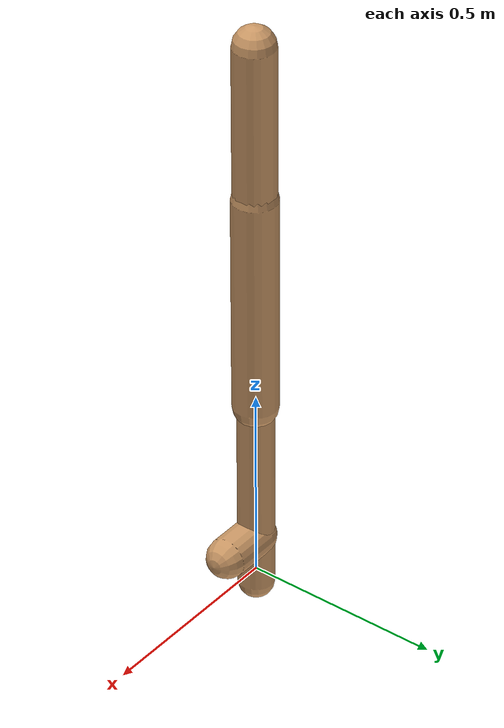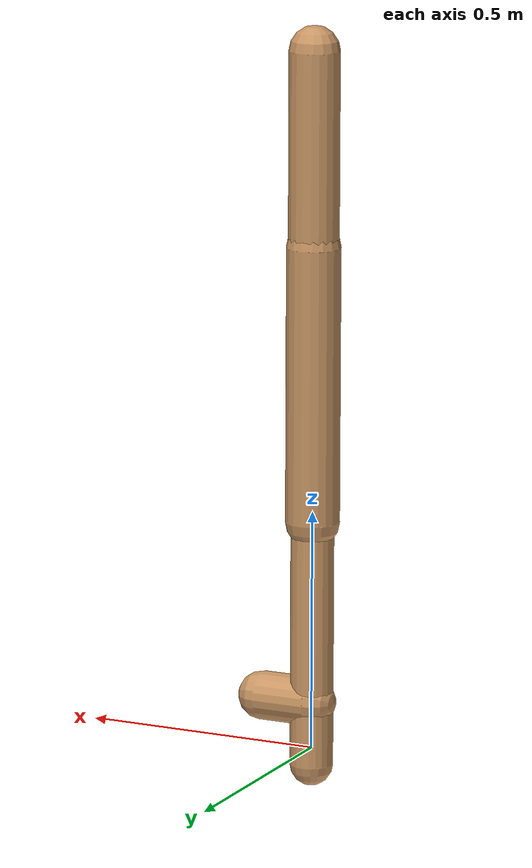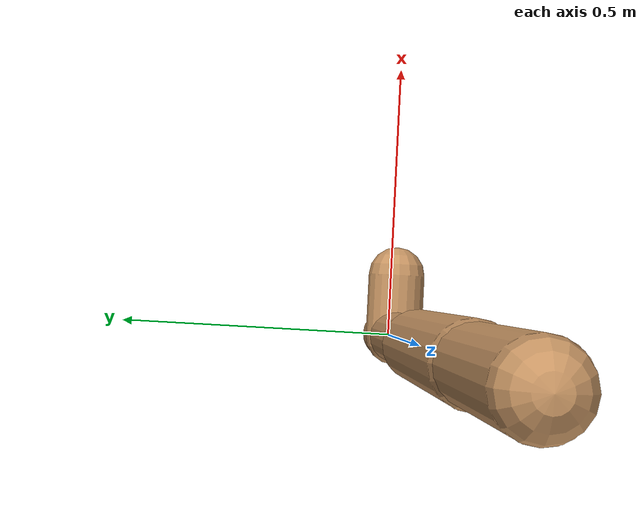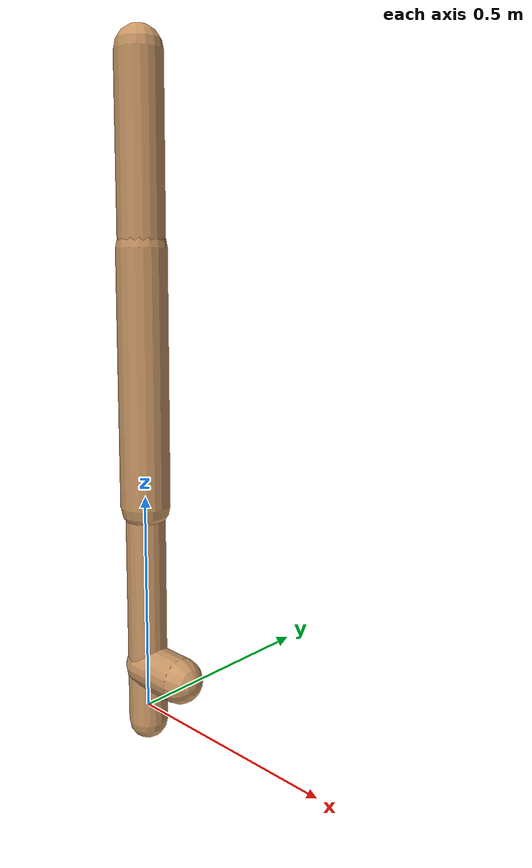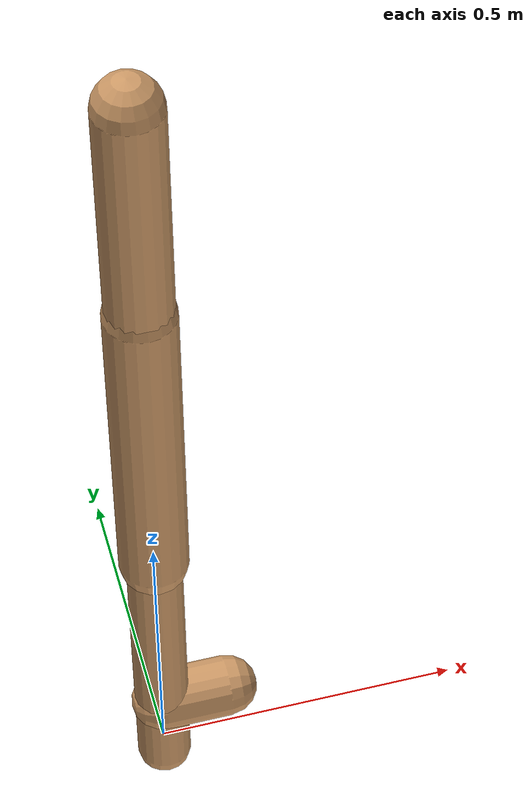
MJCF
<mujoco model="walker2d">
  <compiler angle="degree" coordinate="global" inertiafromgeom="true" />
  <default>
    <joint armature="0.01" damping=".1" limited="true" />
    <geom conaffinity="0" condim="3" contype="1" density="1000" friction="0.8 .1 .1" rgba="0.8 0.6 .4 1" />
  </default>
  <option integrator="RK4" timestep="0.002" />
  <worldbody>

    <body name="torso" pos="0 0 0.25281072058637566">
      <joint armature="0" axis="1 0 0" damping="0" limited="false" name="ignorex" pos="0 0 0" stiffness="0" type="slide" />
      <joint armature="0" axis="0 0 1" damping="0" limited="false" name="ignorez" pos="0 0 0" ref="1.25" stiffness="0" type="slide" />
      <joint armature="0" axis="0 1 0" damping="0" limited="false" name="ignorey" pos="0 0 0" stiffness="0" type="hinge" />
      <geom fromto="0 0 1.45 0 0 1.05" name="torso_geom" size="0.05228052992169427" type="capsule" />
      <body name="thigh">
        <joint axis="0 -1 0" name="thigh_joint" pos="0 0 1.05" range="-150 0" type="hinge" />
        <geom fromto="0.0 0.0 1.05 0.0 0.0 0.4802475534064536" name="thigh_geom" size="0.05597730774967328" type="capsule" />
        <body name="leg" pos="0.0 0.0 -0.11975244659354639">
          <joint axis="0 -1 0" name="leg_joint" pos="0 0 0.6" range="-150 0" type="hinge" />
          <geom fromto="0.0 0.0 0.6 0.0 0.0 -0.03305827399282929" name="leg_geom" size="0.04478184619973862" type="capsule" />
          <body name="foot" pos="0.0 0.0 -0.1330582739928293">
            <joint axis="0 -1 0" name="foot_joint" pos="0 0 0.1" range="-45 45" type="hinge" />
            <geom fromto="0.0 0.0 0.1 0.1111388779036639 0.0 0.1" name="foot_geom" size="0.050433705349613694" type="capsule" />
          </body>
        </body>
      </body>

      <body name="thigh_left">
        <joint axis="0 -1 0" name="thigh_left_joint" pos="0 0 1.05" range="-150 0" type="hinge" />
        <geom fromto="0.0 0.0 1.05 0.0 0.0 0.4802475534064536" name="thigh_left_geom" rgba=".7 .3 .6 1" size="0.05597730774967328" type="capsule" />
        <body name="leg_left" pos="0.0 0.0 -0.11975244659354639">
          <joint axis="0 -1 0" name="leg_left_joint" pos="0 0 0.6" range="-150 0" type="hinge" />
          <geom fromto="0.0 0.0 0.6 0.0 0.0 -0.03305827399282929" name="leg_left_geom" rgba=".7 .3 .6 1" size="0.04478184619973862" type="capsule" />
          <body name="foot_left" pos="0.0 0.0 -0.1330582739928293">
            <joint axis="0 -1 0" name="foot_left_joint" pos="0 0 0.1" range="-45 45" type="hinge" />
            <geom fromto="0.0 0.0 0.1 0.1111388779036639 0.0 0.1" name="foot_left_geom" rgba=".7 .3 .6 1" size="0.050433705349613694" type="capsule" />
          </body>
        </body>
      </body>
    </body>
  </worldbody>
  <actuator>

    <motor ctrllimited="true" ctrlrange="-1.0 1.0" gear="100" joint="thigh_joint" />
    <motor ctrllimited="true" ctrlrange="-1.0 1.0" gear="100" joint="leg_joint" />
    <motor ctrllimited="true" ctrlrange="-1.0 1.0" gear="100" joint="foot_joint" />
    <motor ctrllimited="true" ctrlrange="-1.0 1.0" gear="100" joint="thigh_left_joint" />
    <motor ctrllimited="true" ctrlrange="-1.0 1.0" gear="100" joint="leg_left_joint" />
    <motor ctrllimited="true" ctrlrange="-1.0 1.0" gear="100" joint="foot_left_joint" />

  </actuator>
</mujoco>
